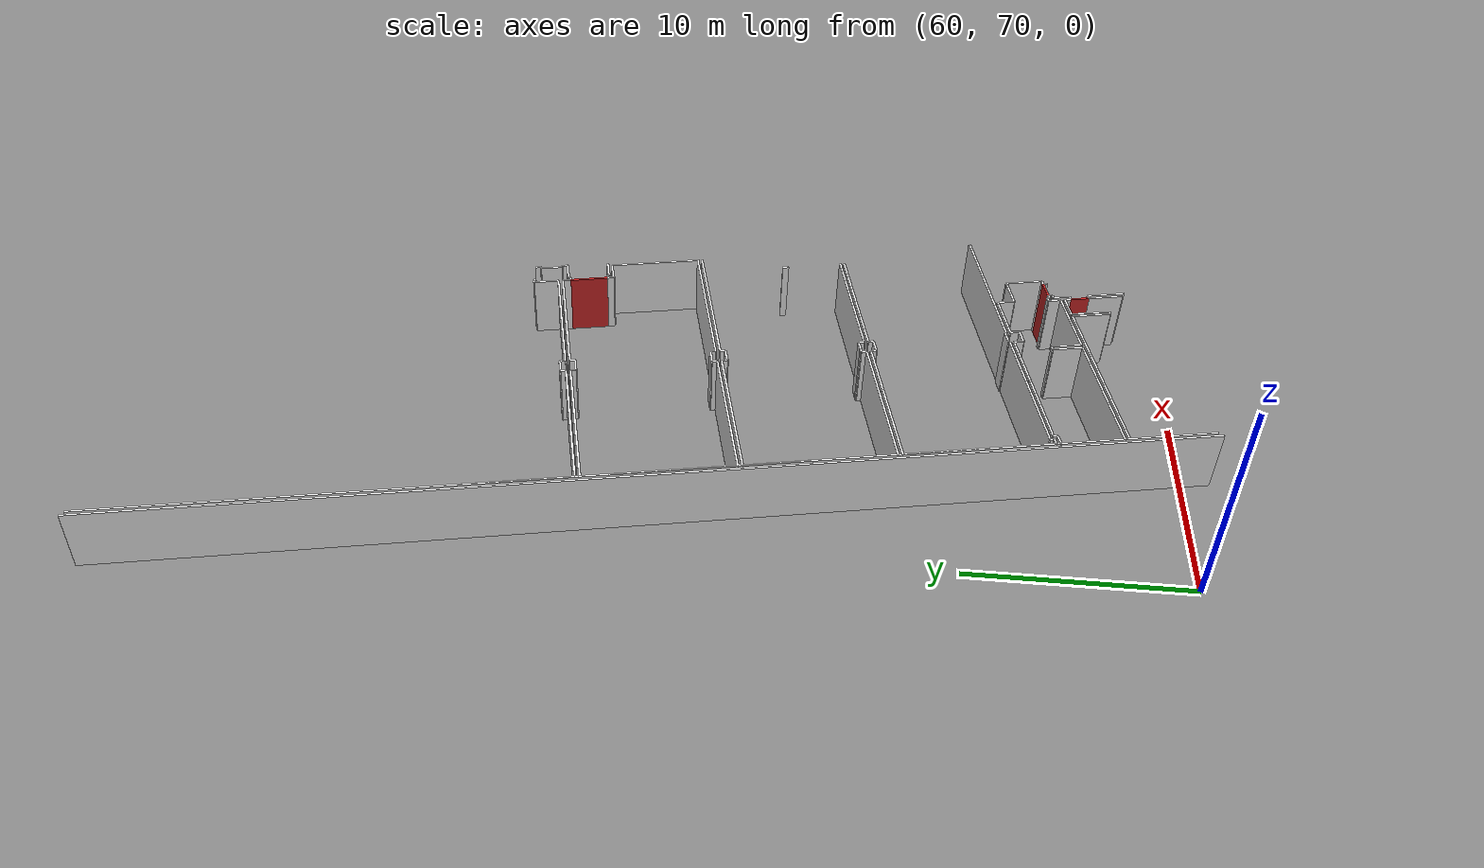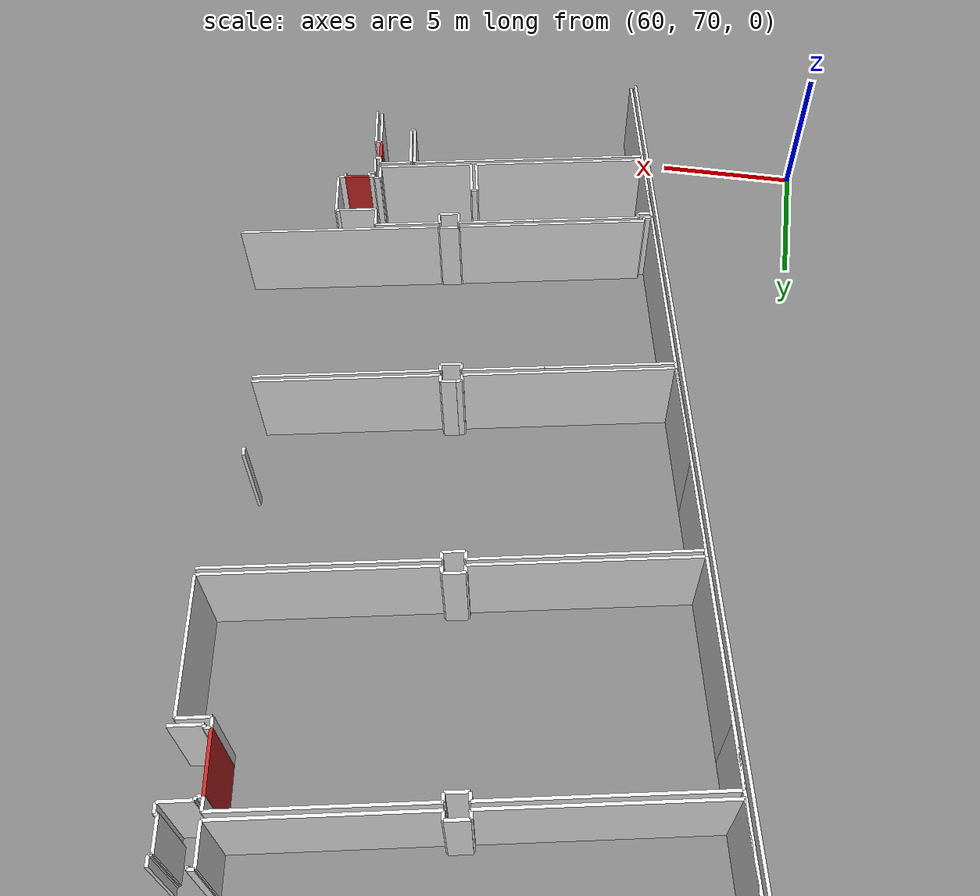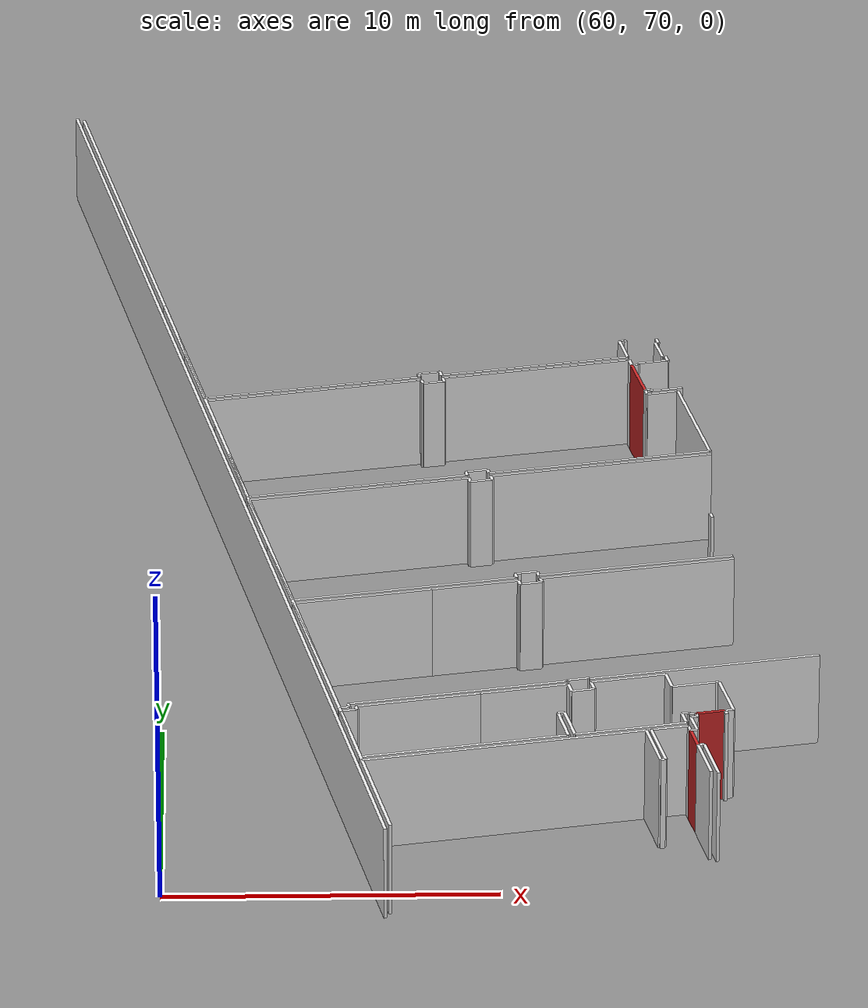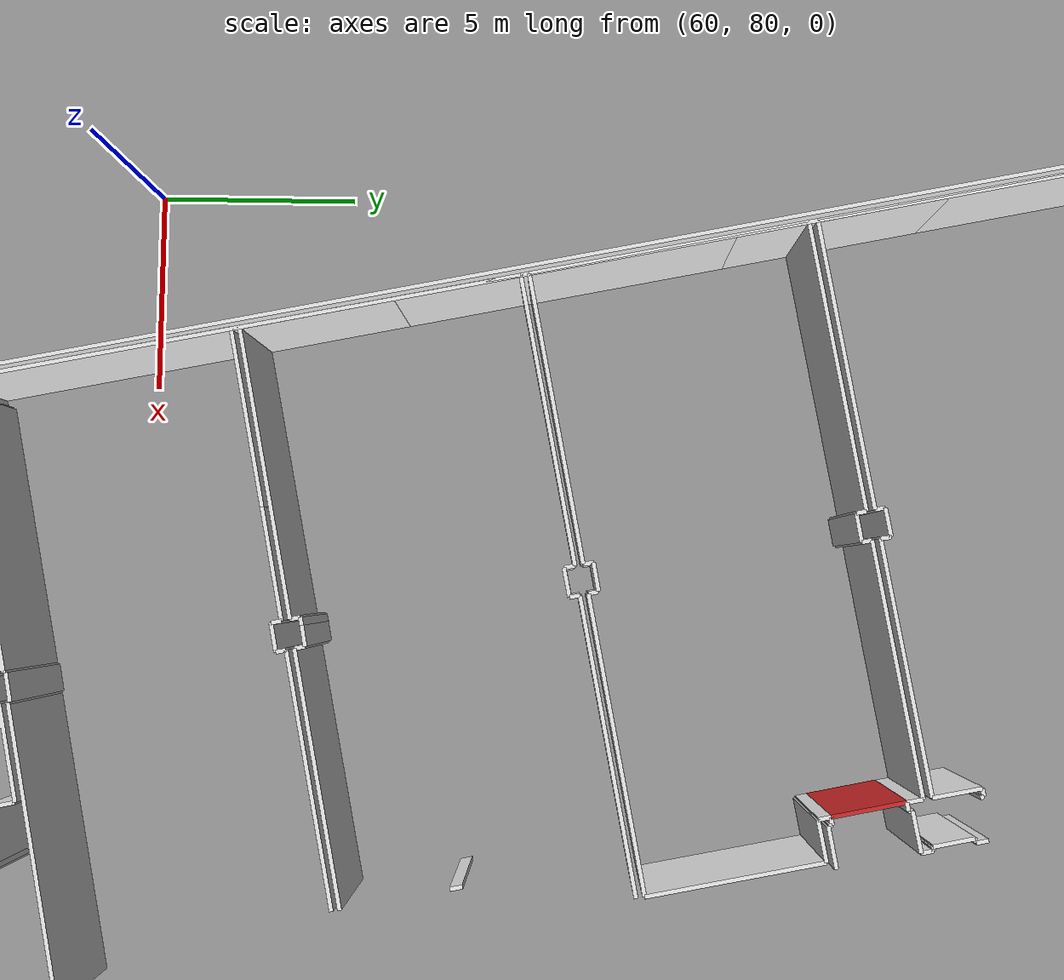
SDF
<sdf version="1.6">
 <world name="default">
  <model name="wall_75.1_97.8">
   <static>true</static>
   <pose>75.0800000000163 97.75 1.5 0 0 -1.3690339824572944</pose>
   <link name="link">
    <visual name="visual">
     <geometry><box><size>1.7964409256090668 0.1 3</size></box></geometry>
     <material>
      <script><uri>file://media/materials/scripts/gazebo.material</uri><name>Gazebo/Red</name></script>
     </material>
    </visual>
   </link>
  </model>
  <model name="wall_76.4_75.6">
   <static>true</static>
   <pose>76.39000000001397 75.57500000018626 1.5 0 0 0.19083110263865674</pose>
   <link name="link">
    <visual name="visual">
     <geometry><box><size>0.8962700485807075 0.1 3</size></box></geometry>
     <material>
      <script><uri>file://media/materials/scripts/gazebo.material</uri><name>Gazebo/Red</name></script>
     </material>
    </visual>
   </link>
  </model>
  <model name="wall_75.8_74.0">
   <static>true</static>
   <pose>75.83999999999651 74.0 1.5 0 0 -1.3690339824572944</pose>
   <link name="link">
    <visual name="visual">
     <geometry><box><size>0.8982204628045334 0.1 3</size></box></geometry>
     <material>
      <script><uri>file://media/materials/scripts/gazebo.material</uri><name>Gazebo/Red</name></script>
     </material>
    </visual>
   </link>
  </model>
  <model name="wall_60.6_99.9">
   <static>true</static>
   <pose>60.57499999998254 99.86999999987893 1.5 0 0 -1.3731111637109774</pose>
   <link name="link">
    <visual name="visual">
     <geometry><box><size>6.771890430431879 0.1 3</size></box></geometry>
     <material>
      <script><uri>file://media/materials/scripts/gazebo.material</uri><name>Gazebo/White</name></script>
     </material>
    </visual>
   </link>
  </model>
  <model name="wall_64.7_97.2">
   <static>true</static>
   <pose>64.67499999998836 97.2249999998603 1.5 0 0 0.19403422798469777</pose>
   <link name="link">
    <visual name="visual">
     <geometry><box><size>7.001385577168813 0.1 3</size></box></geometry>
     <material>
      <script><uri>file://media/materials/scripts/gazebo.material</uri><name>Gazebo/White</name></script>
     </material>
    </visual>
   </link>
  </model>
  <model name="wall_68.1_98.0">
   <static>true</static>
   <pose>68.08499999999185 98.02000000001863 1.5 0 0 1.7761917157522207</pose>
   <link name="link">
    <visual name="visual">
     <geometry><box><size>0.24515301365907008 0.1 3</size></box></geometry>
     <material>
      <script><uri>file://media/materials/scripts/gazebo.material</uri><name>Gazebo/White</name></script>
     </material>
    </visual>
   </link>
  </model>
  <model name="wall_68.4_98.2">
   <static>true</static>
   <pose>68.40499999999884 98.20999999996275 1.5 0 0 0.20018106749853645</pose>
   <link name="link">
    <visual name="visual">
     <geometry><box><size>0.7040596564988906 0.1 3</size></box></geometry>
     <material>
      <script><uri>file://media/materials/scripts/gazebo.material</uri><name>Gazebo/White</name></script>
     </material>
    </visual>
   </link>
  </model>
  <model name="wall_68.8_98.2">
   <static>true</static>
   <pose>68.76999999998952 98.15499999979511 1.5 0 0 -1.412141064690222</pose>
   <link name="link">
    <visual name="visual">
     <geometry><box><size>0.2531797780201326 0.1 3</size></box></geometry>
     <material>
      <script><uri>file://media/materials/scripts/gazebo.material</uri><name>Gazebo/White</name></script>
     </material>
    </visual>
   </link>
  </model>
  <model name="wall_71.8_98.6">
   <static>true</static>
   <pose>71.78999999997905 98.625 1.5 0 0 0.1957924833792323</pose>
   <link name="link">
    <visual name="visual">
     <geometry><box><size>6.11687011477073 0.1 3</size></box></geometry>
     <material>
      <script><uri>file://media/materials/scripts/gazebo.material</uri><name>Gazebo/White</name></script>
     </material>
    </visual>
   </link>
  </model>
  <model name="wall_74.7_99.8">
   <static>true</static>
   <pose>74.67499999998836 99.80000000004657 1.5 0 0 1.76653351340899</pose>
   <link name="link">
    <visual name="visual">
     <geometry><box><size>1.1825819207381807 0.1 3</size></box></geometry>
     <material>
      <script><uri>file://media/materials/scripts/gazebo.material</uri><name>Gazebo/White</name></script>
     </material>
    </visual>
   </link>
  </model>
  <model name="wall_74.9_98.8">
   <static>true</static>
   <pose>74.86500000001979 98.81999999983236 1.5 0 0 1.7529646373378367</pose>
   <link name="link">
    <visual name="visual">
     <geometry><box><size>0.3863935816185891 0.1 3</size></box></geometry>
     <material>
      <script><uri>file://media/materials/scripts/gazebo.material</uri><name>Gazebo/White</name></script>
     </material>
    </visual>
   </link>
  </model>
  <model name="wall_71.8_98.4">
   <static>true</static>
   <pose>71.8300000000163 98.4199999999255 1.5 0 0 -2.947404266883771</pose>
   <link name="link">
    <visual name="visual">
     <geometry><box><size>6.114932542497641 0.1 3</size></box></geometry>
     <material>
      <script><uri>file://media/materials/scripts/gazebo.material</uri><name>Gazebo/White</name></script>
     </material>
    </visual>
   </link>
  </model>
  <model name="wall_68.9_97.7">
   <static>true</static>
   <pose>68.85500000001048 97.70999999996275 1.5 0 0 -1.3654009378375724</pose>
   <link name="link">
    <visual name="visual">
     <geometry><box><size>0.24515301365907008 0.1 3</size></box></geometry>
     <material>
      <script><uri>file://media/materials/scripts/gazebo.material</uri><name>Gazebo/White</name></script>
     </material>
    </visual>
   </link>
  </model>
  <model name="wall_68.5_97.5">
   <static>true</static>
   <pose>68.54000000000815 97.52499999990687 1.5 0 0 -2.952695472868832</pose>
   <link name="link">
    <visual name="visual">
     <geometry><box><size>0.6923149571989928 0.1 3</size></box></geometry>
     <material>
      <script><uri>file://media/materials/scripts/gazebo.material</uri><name>Gazebo/White</name></script>
     </material>
    </visual>
   </link>
  </model>
  <model name="wall_68.2_97.6">
   <static>true</static>
   <pose>68.17500000001746 97.5800000000745 1.5 0 0 1.7761917157522207</pose>
   <link name="link">
    <visual name="visual">
     <geometry><box><size>0.24515301365907008 0.1 3</size></box></geometry>
     <material>
      <script><uri>file://media/materials/scripts/gazebo.material</uri><name>Gazebo/White</name></script>
     </material>
    </visual>
   </link>
  </model>
  <model name="wall_64.7_97.0">
   <static>true</static>
   <pose>64.71500000002561 97.02000000001863 1.5 0 0 -2.946157326410305</pose>
   <link name="link">
    <visual name="visual">
     <geometry><box><size>7.003320641013659 0.1 3</size></box></geometry>
     <material>
      <script><uri>file://media/materials/scripts/gazebo.material</uri><name>Gazebo/White</name></script>
     </material>
    </visual>
   </link>
  </model>
  <model name="wall_61.9_93.0">
   <static>true</static>
   <pose>61.94000000000233 93.02000000001863 1.5 0 0 -1.3745595149757288</pose>
   <link name="link">
    <visual name="visual">
     <geometry><box><size>6.769933529615509 0.1 3</size></box></geometry>
     <material>
      <script><uri>file://media/materials/scripts/gazebo.material</uri><name>Gazebo/White</name></script>
     </material>
    </visual>
   </link>
  </model>
  <model name="wall_66.0_90.4">
   <static>true</static>
   <pose>66.03499999997439 90.38000000012107 1.5 0 0 0.1954353271142626</pose>
   <link name="link">
    <visual name="visual">
     <geometry><box><size>7.0033206409232305 0.1 3</size></box></geometry>
     <material>
      <script><uri>file://media/materials/scripts/gazebo.material</uri><name>Gazebo/White</name></script>
     </material>
    </visual>
   </link>
  </model>
  <model name="wall_69.4_91.2">
   <static>true</static>
   <pose>69.44999999998254 91.17999999993481 1.5 0 0 1.7359450042881825</pose>
   <link name="link">
    <visual name="visual">
     <geometry><box><size>0.2433105009696346 0.1 3</size></box></geometry>
     <material>
      <script><uri>file://media/materials/scripts/gazebo.material</uri><name>Gazebo/White</name></script>
     </material>
    </visual>
   </link>
  </model>
  <model name="wall_69.8_91.4">
   <static>true</static>
   <pose>69.76999999998952 91.36499999999069 1.5 0 0 0.1888971813816114</pose>
   <link name="link">
    <visual name="visual">
     <geometry><box><size>0.6923149572864328 0.1 3</size></box></geometry>
     <material>
      <script><uri>file://media/materials/scripts/gazebo.material</uri><name>Gazebo/White</name></script>
     </material>
    </visual>
   </link>
  </model>
  <model name="wall_70.1_91.3">
   <static>true</static>
   <pose>70.13499999998021 91.31000000005588 1.5 0 0 -1.3654009378375724</pose>
   <link name="link">
    <visual name="visual">
     <geometry><box><size>0.24515301365907008 0.1 3</size></box></geometry>
     <material>
      <script><uri>file://media/materials/scripts/gazebo.material</uri><name>Gazebo/White</name></script>
     </material>
    </visual>
   </link>
  </model>
  <model name="wall_73.6_91.9">
   <static>true</static>
   <pose>73.64499999998952 91.87999999988824 1.5 0 0 0.1954634617685791</pose>
   <link name="link">
    <visual name="visual">
     <geometry><box><size>7.105300838114702 0.1 3</size></box></geometry>
     <material>
      <script><uri>file://media/materials/scripts/gazebo.material</uri><name>Gazebo/White</name></script>
     </material>
    </visual>
   </link>
  </model>
  <model name="wall_76.7_94.7">
   <static>true</static>
   <pose>76.71499999999651 94.6699999999255 1.5 0 0 1.765901464626056</pose>
   <link name="link">
    <visual name="visual">
     <geometry><box><size>4.281226459975188 0.1 3</size></box></geometry>
     <material>
      <script><uri>file://media/materials/scripts/gazebo.material</uri><name>Gazebo/White</name></script>
     </material>
    </visual>
   </link>
  </model>
  <model name="wall_75.8_96.7">
   <static>true</static>
   <pose>75.80999999999767 96.6699999999255 1.5 0 0 -2.9402755450289626</pose>
   <link name="link">
    <visual name="visual">
     <geometry><box><size>1.0001999800229942 0.1 3</size></box></geometry>
     <material>
      <script><uri>file://media/materials/scripts/gazebo.material</uri><name>Gazebo/White</name></script>
     </material>
    </visual>
   </link>
  </model>
  <model name="wall_75.3_96.7">
   <static>true</static>
   <pose>75.29000000000815 96.71999999997206 1.5 0 0 1.7681918864582145</pose>
   <link name="link">
    <visual name="visual">
     <geometry><box><size>0.30594117108908153 0.1 3</size></box></geometry>
     <material>
      <script><uri>file://media/materials/scripts/gazebo.material</uri><name>Gazebo/White</name></script>
     </material>
    </visual>
   </link>
  </model>
  <model name="wall_77.0_88.2">
   <static>true</static>
   <pose>76.98000000001048 88.21499999985099 1.5 0 0 1.7748143063542596</pose>
   <link name="link">
    <visual name="visual">
     <geometry><box><size>0.2961418579352255 0.1 3</size></box></geometry>
     <material>
      <script><uri>file://media/materials/scripts/gazebo.material</uri><name>Gazebo/White</name></script>
     </material>
    </visual>
   </link>
  </model>
  <model name="wall_73.7_91.7">
   <static>true</static>
   <pose>73.68499999999767 91.68000000016764 1.5 0 0 -2.946129191819623</pose>
   <link name="link">
    <visual name="visual">
     <geometry><box><size>7.105300838057603 0.1 3</size></box></geometry>
     <material>
      <script><uri>file://media/materials/scripts/gazebo.material</uri><name>Gazebo/White</name></script>
     </material>
    </visual>
   </link>
  </model>
  <model name="wall_70.2_90.9">
   <static>true</static>
   <pose>70.22500000000582 90.87000000011176 1.5 0 0 -1.3654009378375724</pose>
   <link name="link">
    <visual name="visual">
     <geometry><box><size>0.24515301365907008 0.1 3</size></box></geometry>
     <material>
      <script><uri>file://media/materials/scripts/gazebo.material</uri><name>Gazebo/White</name></script>
     </material>
    </visual>
   </link>
  </model>
  <model name="wall_69.9_90.7">
   <static>true</static>
   <pose>69.90499999999884 90.67999999993481 1.5 0 0 -2.9414115854430696</pose>
   <link name="link">
    <visual name="visual">
     <geometry><box><size>0.7040596565914858 0.1 3</size></box></geometry>
     <material>
      <script><uri>file://media/materials/scripts/gazebo.material</uri><name>Gazebo/White</name></script>
     </material>
    </visual>
   </link>
  </model>
  <model name="wall_69.5_90.7">
   <static>true</static>
   <pose>69.53500000000349 90.73999999999069 1.5 0 0 1.7607846144977208</pose>
   <link name="link">
    <visual name="visual">
     <geometry><box><size>0.2647640461330629 0.1 3</size></box></geometry>
     <material>
      <script><uri>file://media/materials/scripts/gazebo.material</uri><name>Gazebo/White</name></script>
     </material>
    </visual>
   </link>
  </model>
  <model name="wall_66.1_90.2">
   <static>true</static>
   <pose>66.07500000001164 90.18500000005588 1.5 0 0 -2.94475700407996</pose>
   <link name="link">
    <visual name="visual">
     <geometry><box><size>7.005269445227802 0.1 3</size></box></geometry>
     <material>
      <script><uri>file://media/materials/scripts/gazebo.material</uri><name>Gazebo/White</name></script>
     </material>
    </visual>
   </link>
  </model>
  <model name="wall_63.3_86.2">
   <static>true</static>
   <pose>63.304999999993015 86.17999999993481 1.5 0 0 -1.3731111637194056</pose>
   <link name="link">
    <visual name="visual">
     <geometry><box><size>6.771890430420447 0.1 3</size></box></geometry>
     <material>
      <script><uri>file://media/materials/scripts/gazebo.material</uri><name>Gazebo/White</name></script>
     </material>
    </visual>
   </link>
  </model>
  <model name="wall_67.4_83.5">
   <static>true</static>
   <pose>67.40499999999884 83.54000000003725 1.5 0 0 0.1954353271778743</pose>
   <link name="link">
    <visual name="visual">
     <geometry><box><size>7.003320641070759 0.1 3</size></box></geometry>
     <material>
      <script><uri>file://media/materials/scripts/gazebo.material</uri><name>Gazebo/White</name></script>
     </material>
    </visual>
   </link>
  </model>
  <model name="wall_70.8_84.3">
   <static>true</static>
   <pose>70.81500000000233 84.34000000008382 1.5 0 0 1.7761917163720695</pose>
   <link name="link">
    <visual name="visual">
     <geometry><box><size>0.24515301321506852 0.1 3</size></box></geometry>
     <material>
      <script><uri>file://media/materials/scripts/gazebo.material</uri><name>Gazebo/White</name></script>
     </material>
    </visual>
   </link>
  </model>
  <model name="wall_70.9_84.5">
   <static>true</static>
   <pose>70.88499999998021 84.47999999998137 1.5 0 0 0.20749622662047904</pose>
   <link name="link">
    <visual name="visual">
     <geometry><box><size>0.19416487839942884 0.1 3</size></box></geometry>
     <material>
      <script><uri>file://media/materials/scripts/gazebo.material</uri><name>Gazebo/White</name></script>
     </material>
    </visual>
   </link>
  </model>
  <model name="wall_71.2_84.5">
   <static>true</static>
   <pose>71.22499999997672 84.5449999999255 1.5 0 0 0.18164882970920815</pose>
   <link name="link">
    <visual name="visual">
     <geometry><box><size>0.49819674824716687 0.1 3</size></box></geometry>
     <material>
      <script><uri>file://media/materials/scripts/gazebo.material</uri><name>Gazebo/White</name></script>
     </material>
    </visual>
   </link>
  </model>
  <model name="wall_71.5_84.5">
   <static>true</static>
   <pose>71.49499999999534 84.46499999985099 1.5 0 0 -1.3734007667659154</pose>
   <link name="link">
    <visual name="visual">
     <geometry><box><size>0.2549509756887716 0.1 3</size></box></geometry>
     <material>
      <script><uri>file://media/materials/scripts/gazebo.material</uri><name>Gazebo/White</name></script>
     </material>
    </visual>
   </link>
  </model>
  <model name="wall_74.5_84.9">
   <static>true</static>
   <pose>74.52000000001863 84.93499999982305 1.5 0 0 0.19579248330455945</pose>
   <link name="link">
    <visual name="visual">
     <geometry><box><size>6.116870114680138 0.1 3</size></box></geometry>
     <material>
      <script><uri>file://media/materials/scripts/gazebo.material</uri><name>Gazebo/White</name></script>
     </material>
    </visual>
   </link>
  </model>
  <model name="wall_74.6_84.7">
   <static>true</static>
   <pose>74.55499999999302 84.74499999987893 1.5 0 0 -2.945481614557841</pose>
   <link name="link">
    <visual name="visual">
     <geometry><box><size>6.107061486488853 0.1 3</size></box></geometry>
     <material>
      <script><uri>file://media/materials/scripts/gazebo.material</uri><name>Gazebo/White</name></script>
     </material>
    </visual>
   </link>
  </model>
  <model name="wall_71.6_84.0">
   <static>true</static>
   <pose>71.58499999999185 84.03000000002794 1.5 0 0 -1.365400937450167</pose>
   <link name="link">
    <visual name="visual">
     <geometry><box><size>0.24515301320319682 0.1 3</size></box></geometry>
     <material>
      <script><uri>file://media/materials/scripts/gazebo.material</uri><name>Gazebo/White</name></script>
     </material>
    </visual>
   </link>
  </model>
  <model name="wall_71.3_83.8">
   <static>true</static>
   <pose>71.26999999998952 83.84499999997206 1.5 0 0 -2.9526954722081817</pose>
   <link name="link">
    <visual name="visual">
     <geometry><box><size>0.6923149572864328 0.1 3</size></box></geometry>
     <material>
      <script><uri>file://media/materials/scripts/gazebo.material</uri><name>Gazebo/White</name></script>
     </material>
    </visual>
   </link>
  </model>
  <model name="wall_70.9_83.9">
   <static>true</static>
   <pose>70.90499999999884 83.89999999990687 1.5 0 0 1.7761917157522207</pose>
   <link name="link">
    <visual name="visual">
     <geometry><box><size>0.24515301365907008 0.1 3</size></box></geometry>
     <material>
      <script><uri>file://media/materials/scripts/gazebo.material</uri><name>Gazebo/White</name></script>
     </material>
    </visual>
   </link>
  </model>
  <model name="wall_69.5_83.8">
   <static>true</static>
   <pose>69.54999999998836 83.76000000000931 1.5 0 0 -2.948538600466728</pose>
   <link name="link">
    <visual name="visual">
     <geometry><box><size>2.7103505308710134 0.1 3</size></box></geometry>
     <material>
      <script><uri>file://media/materials/scripts/gazebo.material</uri><name>Gazebo/White</name></script>
     </material>
    </visual>
   </link>
  </model>
  <model name="wall_66.1_83.1">
   <static>true</static>
   <pose>66.10999999998603 83.0800000000745 1.5 0 0 -2.9451086705483704</pose>
   <link name="link">
    <visual name="visual">
     <geometry><box><size>4.30278979262453 0.1 3</size></box></geometry>
     <material>
      <script><uri>file://media/materials/scripts/gazebo.material</uri><name>Gazebo/White</name></script>
     </material>
    </visual>
   </link>
  </model>
  <model name="wall_64.7_79.3">
   <static>true</static>
   <pose>64.66500000000815 79.34000000008382 1.5 0 0 -1.3731111637109774</pose>
   <link name="link">
    <visual name="visual">
     <geometry><box><size>6.771890430431879 0.1 3</size></box></geometry>
     <material>
      <script><uri>file://media/materials/scripts/gazebo.material</uri><name>Gazebo/White</name></script>
     </material>
    </visual>
   </link>
  </model>
  <model name="wall_65.5_76.1">
   <static>true</static>
   <pose>65.48000000001048 76.05000000004657 1.5 0 0 0.19739556003644376</pose>
   <link name="link">
    <visual name="visual">
     <geometry><box><size>0.30594117081511046 0.1 3</size></box></geometry>
     <material>
      <script><uri>file://media/materials/scripts/gazebo.material</uri><name>Gazebo/White</name></script>
     </material>
    </visual>
   </link>
  </model>
  <model name="wall_65.6_76.2">
   <static>true</static>
   <pose>65.61000000001513 76.1699999999255 1.5 0 0 1.7894652729085172</pose>
   <link name="link">
    <visual name="visual">
     <geometry><box><size>0.18439088885038563 0.1 3</size></box></geometry>
     <material>
      <script><uri>file://media/materials/scripts/gazebo.material</uri><name>Gazebo/White</name></script>
     </material>
    </visual>
   </link>
  </model>
  <model name="wall_68.9_76.9">
   <static>true</static>
   <pose>68.88000000000466 76.91499999980442 1.5 0 0 0.19651862351580723</pose>
   <link name="link">
    <visual name="visual">
     <geometry><box><size>6.709135562767745 0.1 3</size></box></geometry>
     <material>
      <script><uri>file://media/materials/scripts/gazebo.material</uri><name>Gazebo/White</name></script>
     </material>
    </visual>
   </link>
  </model>
  <model name="wall_72.2_77.6">
   <static>true</static>
   <pose>72.16499999997905 77.59499999997206 1.5 0 0 1.7681918857492749</pose>
   <link name="link">
    <visual name="visual">
     <geometry><box><size>0.05099019541172539 0.1 3</size></box></geometry>
     <material>
      <script><uri>file://media/materials/scripts/gazebo.material</uri><name>Gazebo/White</name></script>
     </material>
    </visual>
   </link>
  </model>
  <model name="wall_72.5_77.7">
   <static>true</static>
   <pose>72.5 77.68500000005588 1.5 0 0 0.18889718070517353</pose>
   <link name="link">
    <visual name="visual">
     <geometry><box><size>0.6923149572561651 0.1 3</size></box></geometry>
     <material>
      <script><uri>file://media/materials/scripts/gazebo.material</uri><name>Gazebo/White</name></script>
     </material>
    </visual>
   </link>
  </model>
  <model name="wall_72.8_77.7">
   <static>true</static>
   <pose>72.84500000000116 77.72500000009313 1.5 0 0 -1.3734007671688915</pose>
   <link name="link">
    <visual name="visual">
     <geometry><box><size>0.05099019494369148 0.1 3</size></box></geometry>
     <material>
      <script><uri>file://media/materials/scripts/gazebo.material</uri><name>Gazebo/White</name></script>
     </material>
    </visual>
   </link>
  </model>
  <model name="wall_76.3_78.4">
   <static>true</static>
   <pose>76.33999999999651 78.39000000013039 1.5 0 0 0.19519049174249012</pose>
   <link name="link">
    <visual name="visual">
     <geometry><box><size>7.115110680814747 0.1 3</size></box></geometry>
     <material>
      <script><uri>file://media/materials/scripts/gazebo.material</uri><name>Gazebo/White</name></script>
     </material>
    </visual>
   </link>
  </model>
  <model name="wall_65.6_74.4">
   <static>true</static>
   <pose>65.64999999999418 74.41499999980442 1.5 0 0 -1.3740852295395196</pose>
   <link name="link">
    <visual name="visual">
     <geometry><box><size>2.8652574055940305 0.1 3</size></box></geometry>
     <material>
      <script><uri>file://media/materials/scripts/gazebo.material</uri><name>Gazebo/White</name></script>
     </material>
    </visual>
   </link>
  </model>
  <model name="wall_69.0_73.6">
   <static>true</static>
   <pose>69.01999999998952 73.61999999987893 1.5 0 0 0.19490490500725635</pose>
   <link name="link">
    <visual name="visual">
     <geometry><box><size>6.299269798985721 0.1 3</size></box></geometry>
     <material>
      <script><uri>file://media/materials/scripts/gazebo.material</uri><name>Gazebo/White</name></script>
     </material>
    </visual>
   </link>
  </model>
  <model name="wall_72.0_74.9">
   <static>true</static>
   <pose>71.97500000000582 74.9199999999255 1.5 0 0 1.7640078106303387</pose>
   <link name="link">
    <visual name="visual">
     <geometry><box><size>1.4061649973136765 0.1 3</size></box></geometry>
     <material>
      <script><uri>file://media/materials/scripts/gazebo.material</uri><name>Gazebo/White</name></script>
     </material>
    </visual>
   </link>
  </model>
  <model name="wall_71.9_75.6">
   <static>true</static>
   <pose>71.93500000002678 75.62999999988824 1.5 0 0 0.20749622662047904</pose>
   <link name="link">
    <visual name="visual">
     <geometry><box><size>0.19416487839942884 0.1 3</size></box></geometry>
     <material>
      <script><uri>file://media/materials/scripts/gazebo.material</uri><name>Gazebo/White</name></script>
     </material>
    </visual>
   </link>
  </model>
  <model name="wall_72.2_75.0">
   <static>true</static>
   <pose>72.1700000000128 74.95999999996275 1.5 0 0 -1.3706152588342921</pose>
   <link name="link">
    <visual name="visual">
     <geometry><box><size>1.408119313011009 0.1 3</size></box></geometry>
     <material>
      <script><uri>file://media/materials/scripts/gazebo.material</uri><name>Gazebo/White</name></script>
     </material>
    </visual>
   </link>
  </model>
  <model name="wall_74.0_74.6">
   <static>true</static>
   <pose>73.98000000001048 74.60000000009313 1.5 0 0 0.19509141650355566</pose>
   <link name="link">
    <visual name="visual">
     <geometry><box><size>3.404585143650806 0.1 3</size></box></geometry>
     <material>
      <script><uri>file://media/materials/scripts/gazebo.material</uri><name>Gazebo/White</name></script>
     </material>
    </visual>
   </link>
  </model>
  <model name="wall_75.6_75.2">
   <static>true</static>
   <pose>75.59000000002561 75.21999999997206 1.5 0 0 1.7748143065135507</pose>
   <link name="link">
    <visual name="visual">
     <geometry><box><size>0.5922837154144474 0.1 3</size></box></geometry>
     <material>
      <script><uri>file://media/materials/scripts/gazebo.material</uri><name>Gazebo/White</name></script>
     </material>
    </visual>
   </link>
  </model>
  <model name="wall_75.6_75.5">
   <static>true</static>
   <pose>75.63000000000466 75.52999999979511 1.5 0 0 0.1973955600737564</pose>
   <link name="link">
    <visual name="visual">
     <geometry><box><size>0.20396078050535543 0.1 3</size></box></geometry>
     <material>
      <script><uri>file://media/materials/scripts/gazebo.material</uri><name>Gazebo/White</name></script>
     </material>
    </visual>
   </link>
  </model>
  <model name="wall_75.7_75.5">
   <static>true</static>
   <pose>75.73999999999069 75.5 1.5 0 0 -1.3734007660495133</pose>
   <link name="link">
    <visual name="visual">
     <geometry><box><size>0.10198038991021388 0.1 3</size></box></geometry>
     <material>
      <script><uri>file://media/materials/scripts/gazebo.material</uri><name>Gazebo/White</name></script>
     </material>
    </visual>
   </link>
  </model>
  <model name="wall_75.9_75.5">
   <static>true</static>
   <pose>75.85000000000582 75.47000000020489 1.5 0 0 0.19739556001778746</pose>
   <link name="link">
    <visual name="visual">
     <geometry><box><size>0.20396078056243275 0.1 3</size></box></geometry>
     <material>
      <script><uri>file://media/materials/scripts/gazebo.material</uri><name>Gazebo/White</name></script>
     </material>
    </visual>
   </link>
  </model>
  <model name="wall_77.0_75.7">
   <static>true</static>
   <pose>76.9550000000163 75.68500000005588 1.5 0 0 0.19739555913347878</pose>
   <link name="link">
    <visual name="visual">
     <geometry><box><size>0.25495097564310976 0.1 3</size></box></geometry>
     <material>
      <script><uri>file://media/materials/scripts/gazebo.material</uri><name>Gazebo/White</name></script>
     </material>
    </visual>
   </link>
  </model>
  <model name="wall_76.9_76.6">
   <static>true</static>
   <pose>76.90499999999884 76.5800000000745 1.5 0 0 1.7692968585652145</pose>
   <link name="link">
    <visual name="visual">
     <geometry><box><size>1.774852106740809 0.1 3</size></box></geometry>
     <material>
      <script><uri>file://media/materials/scripts/gazebo.material</uri><name>Gazebo/White</name></script>
     </material>
    </visual>
   </link>
  </model>
  <model name="wall_76.7_77.4">
   <static>true</static>
   <pose>76.6699999999837 77.43500000005588 1.5 0 0 -2.896613988408541</pose>
   <link name="link">
    <visual name="visual">
     <geometry><box><size>0.12369316882725834 0.1 3</size></box></geometry>
     <material>
      <script><uri>file://media/materials/scripts/gazebo.material</uri><name>Gazebo/White</name></script>
     </material>
    </visual>
   </link>
  </model>
  <model name="wall_76.0_77.3">
   <static>true</static>
   <pose>75.95999999999185 77.2949999999255 1.5 0 0 -2.9516043656694166</pose>
   <link name="link">
    <visual name="visual">
     <geometry><box><size>1.3238202294759405 0.1 3</size></box></geometry>
     <material>
      <script><uri>file://media/materials/scripts/gazebo.material</uri><name>Gazebo/White</name></script>
     </material>
    </visual>
   </link>
  </model>
  <model name="wall_75.2_77.6">
   <static>true</static>
   <pose>75.23000000001048 77.56000000005588 1.5 0 0 1.7731179550758815</pose>
   <link name="link">
    <visual name="visual">
     <geometry><box><size>0.7962411697460803 0.1 3</size></box></geometry>
     <material>
      <script><uri>file://media/materials/scripts/gazebo.material</uri><name>Gazebo/White</name></script>
     </material>
    </visual>
   </link>
  </model>
  <model name="wall_74.0_77.7">
   <static>true</static>
   <pose>74.02000000001863 77.72500000009313 1.5 0 0 -2.9450481572857363</pose>
   <link name="link">
    <visual name="visual">
     <geometry><box><size>2.3043654224557644 0.1 3</size></box></geometry>
     <material>
      <script><uri>file://media/materials/scripts/gazebo.material</uri><name>Gazebo/White</name></script>
     </material>
    </visual>
   </link>
  </model>
  <model name="wall_72.9_77.3">
   <static>true</static>
   <pose>72.93499999999767 77.28499999991618 1.5 0 0 -1.364472432915976</pose>
   <link name="link">
    <visual name="visual">
     <geometry><box><size>0.4393176528871807 0.1 3</size></box></geometry>
     <material>
      <script><uri>file://media/materials/scripts/gazebo.material</uri><name>Gazebo/White</name></script>
     </material>
    </visual>
   </link>
  </model>
  <model name="wall_72.6_77.0">
   <static>true</static>
   <pose>72.63499999998021 77.00499999988824 1.5 0 0 -2.9553698133356825</pose>
   <link name="link">
    <visual name="visual">
     <geometry><box><size>0.7021395872432744 0.1 3</size></box></geometry>
     <material>
      <script><uri>file://media/materials/scripts/gazebo.material</uri><name>Gazebo/White</name></script>
     </material>
    </visual>
   </link>
  </model>
  <model name="wall_72.2_77.2">
   <static>true</static>
   <pose>72.24499999999534 77.15999999991618 1.5 0 0 1.77255867106901</pose>
   <link name="link">
    <visual name="visual">
     <geometry><box><size>0.44911023139643436 0.1 3</size></box></geometry>
     <material>
      <script><uri>file://media/materials/scripts/gazebo.material</uri><name>Gazebo/White</name></script>
     </material>
    </visual>
   </link>
  </model>
  <model name="wall_70.9_77.1">
   <static>true</static>
   <pose>70.875 77.11499999999069 1.5 0 0 -2.9441970938159456</pose>
   <link name="link">
    <visual name="visual">
     <geometry><box><size>2.702480342186824 0.1 3</size></box></geometry>
     <material>
      <script><uri>file://media/materials/scripts/gazebo.material</uri><name>Gazebo/White</name></script>
     </material>
    </visual>
   </link>
  </model>
  <model name="wall_67.7_76.5">
   <static>true</static>
   <pose>67.68499999999767 76.47999999998137 1.5 0 0 -2.945744281719576</pose>
   <link name="link">
    <visual name="visual">
     <geometry><box><size>3.8026964117835984 0.1 3</size></box></geometry>
     <material>
      <script><uri>file://media/materials/scripts/gazebo.material</uri><name>Gazebo/White</name></script>
     </material>
    </visual>
   </link>
  </model>
  <model name="wall_65.8_76.0">
   <static>true</static>
   <pose>65.83999999999651 76.01499999989755 1.5 0 0 -1.363300100406013</pose>
   <link name="link">
    <visual name="visual">
     <geometry><box><size>0.19416487833047835 0.1 3</size></box></geometry>
     <material>
      <script><uri>file://media/materials/scripts/gazebo.material</uri><name>Gazebo/White</name></script>
     </material>
    </visual>
   </link>
  </model>
  <model name="wall_65.6_75.9">
   <static>true</static>
   <pose>65.61499999999069 75.86999999987893 1.5 0 0 -2.9402755450289626</pose>
   <link name="link">
    <visual name="visual">
     <geometry><box><size>0.5000999900114971 0.1 3</size></box></geometry>
     <material>
      <script><uri>file://media/materials/scripts/gazebo.material</uri><name>Gazebo/White</name></script>
     </material>
    </visual>
   </link>
  </model>
  <model name="wall_75.7_74.6">
   <static>true</static>
   <pose>75.72000000000116 74.58499999996275 1.5 0 0 1.7748143063542596</pose>
   <link name="link">
    <visual name="visual">
     <geometry><box><size>0.2961418579352255 0.1 3</size></box></geometry>
     <material>
      <script><uri>file://media/materials/scripts/gazebo.material</uri><name>Gazebo/White</name></script>
     </material>
    </visual>
   </link>
  </model>
  <model name="wall_75.1_74.6">
   <static>true</static>
   <pose>75.13500000000931 74.61999999987893 1.5 0 0 -2.945930194077732</pose>
   <link name="link">
    <visual name="visual">
     <geometry><box><size>1.131591799218755 0.1 3</size></box></geometry>
     <material>
      <script><uri>file://media/materials/scripts/gazebo.material</uri><name>Gazebo/White</name></script>
     </material>
    </visual>
   </link>
  </model>
  <model name="wall_74.8_73.6">
   <static>true</static>
   <pose>74.76000000000931 73.60999999986961 1.5 0 0 -1.3734007669325783</pose>
   <link name="link">
    <visual name="visual">
     <geometry><box><size>1.8356470247080154 0.1 3</size></box></geometry>
     <material>
      <script><uri>file://media/materials/scripts/gazebo.material</uri><name>Gazebo/White</name></script>
     </material>
    </visual>
   </link>
  </model>
  <model name="wall_74.9_72.7">
   <static>true</static>
   <pose>74.86499999999069 72.69500000006519 1.5 0 0 -2.944197095083166</pose>
   <link name="link">
    <visual name="visual">
     <geometry><box><size>0.15297058539043204 0.1 3</size></box></geometry>
     <material>
      <script><uri>file://media/materials/scripts/gazebo.material</uri><name>Gazebo/White</name></script>
     </material>
    </visual>
   </link>
  </model>
  <model name="wall_74.6_73.6">
   <static>true</static>
   <pose>74.60999999998603 73.5800000000745 1.5 0 0 1.7681918866572148</pose>
   <link name="link">
    <visual name="visual">
     <geometry><box><size>1.8356470247080154 0.1 3</size></box></geometry>
     <material>
      <script><uri>file://media/materials/scripts/gazebo.material</uri><name>Gazebo/White</name></script>
     </material>
    </visual>
   </link>
  </model>
  <model name="wall_70.2_73.6">
   <static>true</static>
   <pose>70.19999999998254 73.64500000001863 1.5 0 0 -2.9466987942383156</pose>
   <link name="link">
    <visual name="visual">
     <geometry><box><size>8.623253446356873 0.1 3</size></box></geometry>
     <material>
      <script><uri>file://media/materials/scripts/gazebo.material</uri><name>Gazebo/White</name></script>
     </material>
    </visual>
   </link>
  </model>
  <model name="wall_76.1_72.8">
   <static>true</static>
   <pose>76.08999999999651 72.75500000012107 1.5 0 0 1.7669971441026713</pose>
   <link name="link">
    <visual name="visual">
     <geometry><box><size>1.6414932225216863 0.1 3</size></box></geometry>
     <material>
      <script><uri>file://media/materials/scripts/gazebo.material</uri><name>Gazebo/White</name></script>
     </material>
    </visual>
   </link>
  </model>
  <model name="wall_76.0_96.9">
   <static>true</static>
   <pose>75.95999999999185 96.90500000002794 1.5 0 0 -2.950090935182675</pose>
   <link name="link">
    <visual name="visual">
     <geometry><box><size>0.9982484660926583 0.1 3</size></box></geometry>
     <material>
      <script><uri>file://media/materials/scripts/gazebo.material</uri><name>Gazebo/White</name></script>
     </material>
    </visual>
   </link>
  </model>
  <model name="wall_75.5_96.9">
   <static>true</static>
   <pose>75.45999999999185 96.85499999998137 1.5 0 0 1.789465272600359</pose>
   <link name="link">
    <visual name="visual">
     <geometry><box><size>0.0921954444188793 0.1 3</size></box></geometry>
     <material>
      <script><uri>file://media/materials/scripts/gazebo.material</uri><name>Gazebo/White</name></script>
     </material>
    </visual>
   </link>
  </model>
  <model name="wall_75.4_96.9">
   <static>true</static>
   <pose>75.35500000001048 96.88500000000931 1.5 0 0 -2.9849907776618085</pose>
   <link name="link">
    <visual name="visual">
     <geometry><box><size>0.19235384058705793 0.1 3</size></box></geometry>
     <material>
      <script><uri>file://media/materials/scripts/gazebo.material</uri><name>Gazebo/White</name></script>
     </material>
    </visual>
   </link>
  </model>
  <model name="wall_75.0_98.6">
   <static>true</static>
   <pose>75.0 98.64999999990687 1.5 0 0 0.1973955600737564</pose>
   <link name="link">
    <visual name="visual">
     <geometry><box><size>0.20396078050535543 0.1 3</size></box></geometry>
     <material>
      <script><uri>file://media/materials/scripts/gazebo.material</uri><name>Gazebo/White</name></script>
     </material>
    </visual>
   </link>
  </model>
  <model name="wall_75.1_98.7">
   <static>true</static>
   <pose>75.09500000000116 98.71499999985099 1.5 0 0 1.6814535476138674</pose>
   <link name="link">
    <visual name="visual">
     <geometry><box><size>0.09055385122787446 0.1 3</size></box></geometry>
     <material>
      <script><uri>file://media/materials/scripts/gazebo.material</uri><name>Gazebo/White</name></script>
     </material>
    </visual>
   </link>
  </model>
  <model name="wall_75.6_98.9">
   <static>true</static>
   <pose>75.57500000001164 98.85999999986961 1.5 0 0 0.20333608421816718</pose>
   <link name="link">
    <visual name="visual">
     <geometry><box><size>0.99040395799911 0.1 3</size></box></geometry>
     <material>
      <script><uri>file://media/materials/scripts/gazebo.material</uri><name>Gazebo/White</name></script>
     </material>
    </visual>
   </link>
  </model>
  <model name="wall_76.0_99.1">
   <static>true</static>
   <pose>76.02999999999884 99.10499999998137 1.5 0 0 1.7748143063542596</pose>
   <link name="link">
    <visual name="visual">
     <geometry><box><size>0.2961418579352255 0.1 3</size></box></geometry>
     <material>
      <script><uri>file://media/materials/scripts/gazebo.material</uri><name>Gazebo/White</name></script>
     </material>
    </visual>
   </link>
  </model>
  <model name="wall_76.0_99.2">
   <static>true</static>
   <pose>75.9549999999872 99.23999999999069 1.5 0 0 -2.922923707578892</pose>
   <link name="link">
    <visual name="visual">
     <geometry><box><size>0.092195444601971 0.1 3</size></box></geometry>
     <material>
      <script><uri>file://media/materials/scripts/gazebo.material</uri><name>Gazebo/White</name></script>
     </material>
    </visual>
   </link>
  </model>
  <model name="wall_75.8_99.7">
   <static>true</static>
   <pose>75.80999999999767 99.71999999997206 1.5 0 0 1.7721134351276446</pose>
   <link name="link">
    <visual name="visual">
     <geometry><box><size>1.0001999799764374 0.1 3</size></box></geometry>
     <material>
      <script><uri>file://media/materials/scripts/gazebo.material</uri><name>Gazebo/White</name></script>
     </material>
    </visual>
   </link>
  </model>
  <model name="wall_75.8_100.2">
   <static>true</static>
   <pose>75.76000000000931 100.21999999997206 1.5 0 0 0.1973955600737564</pose>
   <link name="link">
    <visual name="visual">
     <geometry><box><size>0.10198039025267772 0.1 3</size></box></geometry>
     <material>
      <script><uri>file://media/materials/scripts/gazebo.material</uri><name>Gazebo/White</name></script>
     </material>
    </visual>
   </link>
  </model>
  <model name="wall_75.8_100.4">
   <static>true</static>
   <pose>75.77999999999884 100.375 1.5 0 0 1.7748143063542596</pose>
   <link name="link">
    <visual name="visual">
     <geometry><box><size>0.2961418579352255 0.1 3</size></box></geometry>
     <material>
      <script><uri>file://media/materials/scripts/gazebo.material</uri><name>Gazebo/White</name></script>
     </material>
    </visual>
   </link>
  </model>
  <model name="wall_74.8_100.4">
   <static>true</static>
   <pose>74.76000000000931 100.375 1.5 0 0 1.7894652732166754</pose>
   <link name="link">
    <visual name="visual">
     <geometry><box><size>0.0921954444315063 0.1 3</size></box></geometry>
     <material>
      <script><uri>file://media/materials/scripts/gazebo.material</uri><name>Gazebo/White</name></script>
     </material>
    </visual>
   </link>
  </model>
  <model name="wall_74.7_100.4">
   <static>true</static>
   <pose>74.65499999999884 100.39999999990687 1.5 0 0 -2.9340964269693144</pose>
   <link name="link">
    <visual name="visual">
     <geometry><box><size>0.19416487839942884 0.1 3</size></box></geometry>
     <material>
      <script><uri>file://media/materials/scripts/gazebo.material</uri><name>Gazebo/White</name></script>
     </material>
    </visual>
   </link>
  </model>
  <model name="wall_76.0_75.4">
   <static>true</static>
   <pose>75.97000000000116 75.39500000001863 1.5 0 0 -1.3633001009000834</pose>
   <link name="link">
    <visual name="visual">
     <geometry><box><size>0.1941648787861511 0.1 3</size></box></geometry>
     <material>
      <script><uri>file://media/materials/scripts/gazebo.material</uri><name>Gazebo/White</name></script>
     </material>
    </visual>
   </link>
  </model>
  <model name="wall_75.9_75.3">
   <static>true</static>
   <pose>75.88999999998487 75.27999999979511 1.5 0 0 -2.9441970935720057</pose>
   <link name="link">
    <visual name="visual">
     <geometry><box><size>0.20396078056243275 0.1 3</size></box></geometry>
     <material>
      <script><uri>file://media/materials/scripts/gazebo.material</uri><name>Gazebo/White</name></script>
     </material>
    </visual>
   </link>
  </model>
  <model name="wall_75.9_74.9">
   <static>true</static>
   <pose>75.86999999999534 74.86999999987893 1.5 0 0 -1.3684746983247826</pose>
   <link name="link">
    <visual name="visual">
     <geometry><box><size>0.7962411693016136 0.1 3</size></box></geometry>
     <material>
      <script><uri>file://media/materials/scripts/gazebo.material</uri><name>Gazebo/White</name></script>
     </material>
    </visual>
   </link>
  </model>
  <model name="wall_75.9_74.5">
   <static>true</static>
   <pose>75.85000000000582 74.45999999996275 1.5 0 0 -2.9441970935720057</pose>
   <link name="link">
    <visual name="visual">
     <geometry><box><size>0.20396078056243275 0.1 3</size></box></geometry>
     <material>
      <script><uri>file://media/materials/scripts/gazebo.material</uri><name>Gazebo/White</name></script>
     </material>
    </visual>
   </link>
  </model>
  <model name="wall_76.0_73.6">
   <static>true</static>
   <pose>76.02499999999418 73.5800000000745 1.5 0 0 0.20749622662047904</pose>
   <link name="link">
    <visual name="visual">
     <geometry><box><size>0.19416487839942884 0.1 3</size></box></geometry>
     <material>
      <script><uri>file://media/materials/scripts/gazebo.material</uri><name>Gazebo/White</name></script>
     </material>
    </visual>
   </link>
  </model>
  <model name="wall_76.3_72.7">
   <static>true</static>
   <pose>76.2949999999837 72.71999999997206 1.5 0 0 -1.374493662723798</pose>
   <link name="link">
    <visual name="visual">
     <geometry><box><size>1.7944637084198858 0.1 3</size></box></geometry>
     <material>
      <script><uri>file://media/materials/scripts/gazebo.material</uri><name>Gazebo/White</name></script>
     </material>
    </visual>
   </link>
  </model>
  <model name="wall_76.9_75.6">
   <static>true</static>
   <pose>76.85000000000582 75.56500000017695 1.5 0 0 1.77829255318378</pose>
   <link name="link">
    <visual name="visual">
     <geometry><box><size>0.19416487833047835 0.1 3</size></box></geometry>
     <material>
      <script><uri>file://media/materials/scripts/gazebo.material</uri><name>Gazebo/White</name></script>
     </material>
    </visual>
   </link>
  </model>
  <model name="wall_61.7_93.1">
   <static>true</static>
   <pose>61.72499999997672 93.08999999985099 1.5 0 0 -1.3737551674021267</pose>
   <link name="link">
    <visual name="visual">
     <geometry><box><size>49.803695645859904 0.1 3</size></box></geometry>
     <material>
      <script><uri>file://media/materials/scripts/gazebo.material</uri><name>Gazebo/White</name></script>
     </material>
    </visual>
   </link>
  </model>
  <model name="wall_61.9_93.1">
   <static>true</static>
   <pose>61.920000000012806 93.125 1.5 0 0 1.767596435957684</pose>
   <link name="link">
    <visual name="visual">
     <geometry><box><size>49.4036243611494 0.1 3</size></box></geometry>
     <material>
      <script><uri>file://media/materials/scripts/gazebo.material</uri><name>Gazebo/White</name></script>
     </material>
    </visual>
   </link>
  </model>
 </world>
</sdf>
